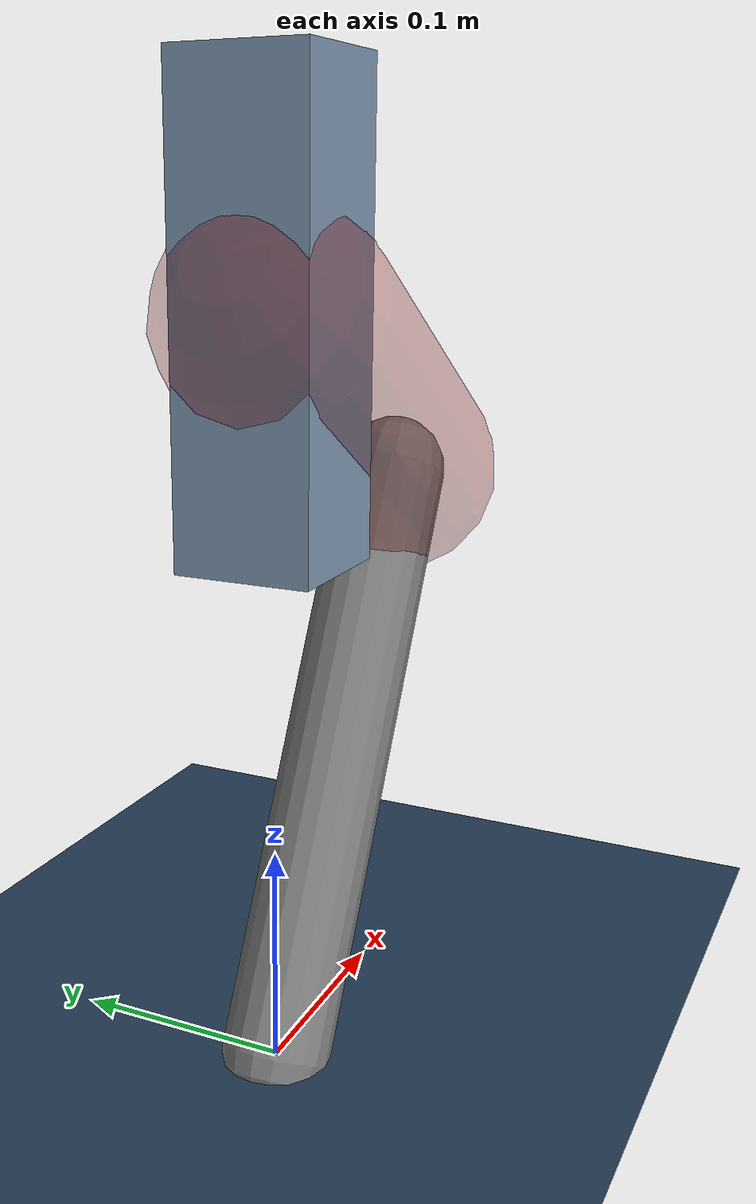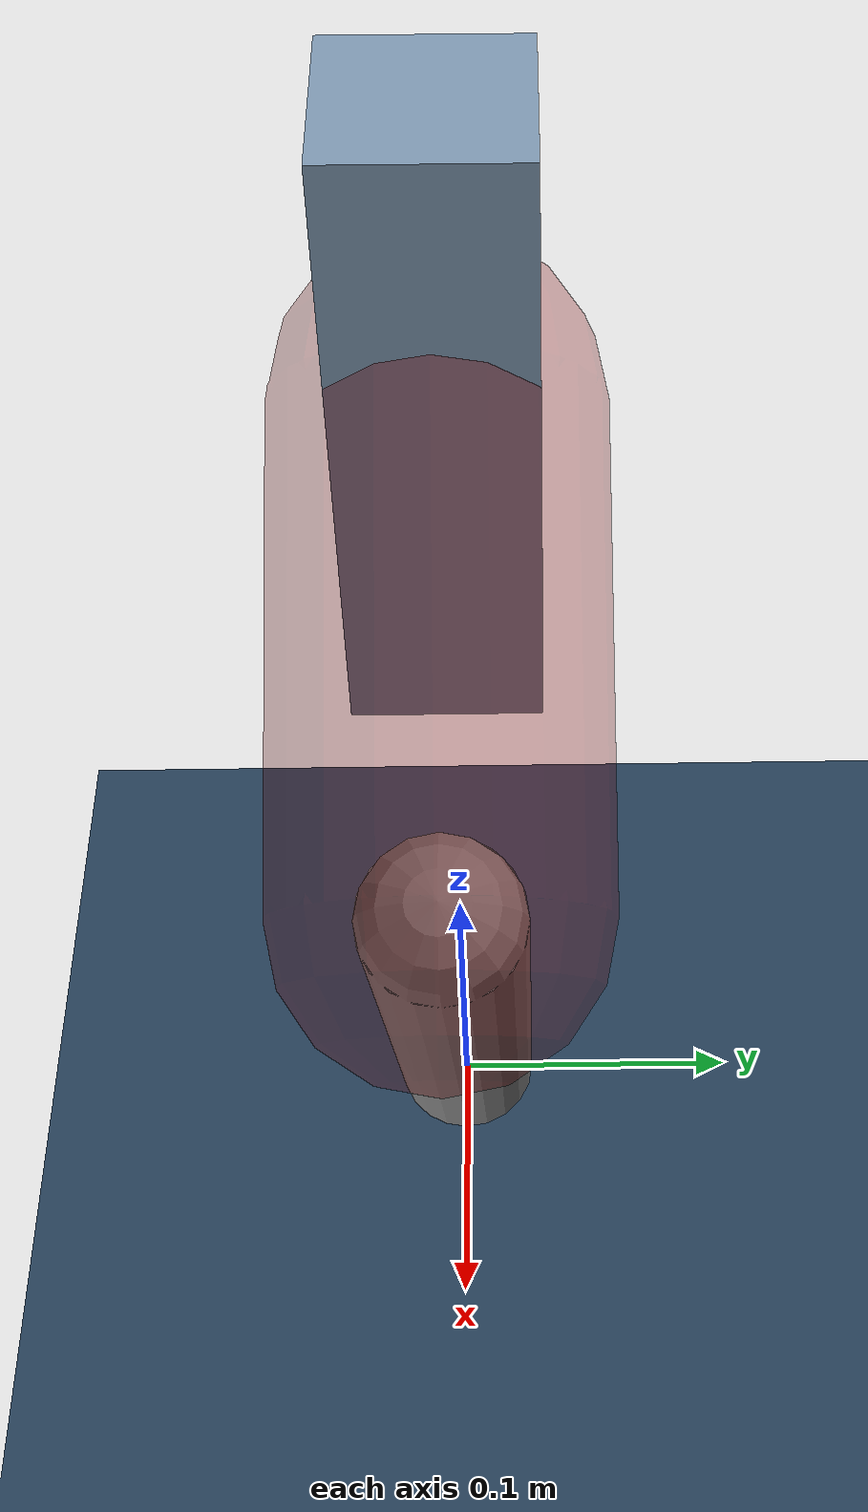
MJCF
<mujoco model="Hopper2D">
	<compiler inertiafromgeom="true" angle="radian" />
	<option timestep="0.001" integrator="implicit" cone="elliptic" solver="Newton" tolerance="1e-10" />

	<default>
		<geom contype="1" conaffinity="1" condim="3" friction="2 0.005 0.0001" solref="0.005 1" />
		<joint limited="true" damping="0.1" />
	</default>

	<asset>
		<texture name="skybox" type="skybox" builtin="gradient" rgb1=".4 .6 .8" rgb2="0 0 0" width="800" height="800" />
		<texture name="grid" type="2d" builtin="checker" rgb1=".1 .2 .3" rgb2=".2 .3 .4" width="300" height="300" mark="edge" markrgb=".2 .3 .4" />
		<material name="ground" texture="grid" texrepeat="1 1" texuniform="true" reflectance="0.1" />
		<material name="leg" rgba="0.5 0.6 0.7 1" />
	</asset>

	<worldbody>

		<geom name="floor" type="plane" size="5 5 0.25" material="ground" />

		<light directional="false" diffuse="0.8 0.8 0.8" specular="0.3 0.3 0.3" pos="0 0 2" dir="0 0 -1" />
		<light mode="targetbodycom" target="base" directional="false" diffuse="0.8 0.8 0.8" specular="0.3 0.3 0.3" pos="0 0 2" dir="0 0 -1" />

		<camera name="fixed" pos="0 -2 1" xyaxes="1 0 0 0 0 1" />
		<camera name="tracking" mode="trackcom" pos="0 -3 1" />

		<body name="root" pos="0 0 0.3306379129147166">
			<joint name="slide_x" type="slide" axis="1 0 0" range="-100 100" />
			<joint name="slide_z" type="slide" axis="0 0 1" range="0 10" />

			<body name="base" pos="0 0 0">
				<geom name="torso" type="box" size="0.03 0.03 0.1" mass="2.371" material="leg" />

				<body name="link1" pos="0 0 0" euler="0 0.5501600402338389 0">
					<joint type="hinge" axis="0 -1 0" pos="0 0 0" name="hinge1" limited="true" range="-3.14 3.14" stiffness="0" damping="0.1" />
					<geom name="thigh" type="capsule" fromto="0 0 0 0.15197325875487327 0 0" size="0.05" rgba="0.5 0 0 0.3" mass="0.6131384951362086" />

					<body name="link2" pos="0.15197325875487327 0 0" euler="0 1.4968066827513187 0">
						<joint type="hinge" axis="0 -1 0" pos="0 0 0" name="hinge2" limited="true" range="-3.14 3.14" stiffness="0" damping="0.1" />
						<geom name="shank" type="capsule" fromto="0 0 0 0.2826225179111056 0 0" size="0.025" mass="0.4692980143288845" />

					</body>
				</body>
			</body>
		</body>
	</worldbody>

	<actuator>
		<motor name="torque1" joint="hinge1" ctrlrange="-74.85530797134176 74.85530797134176" ctrllimited="true" gear="1" />
		<motor name="torque2" joint="hinge2" ctrlrange="-54.031980547065146 54.031980547065146" ctrllimited="true" gear="1" />
	</actuator>
</mujoco>
